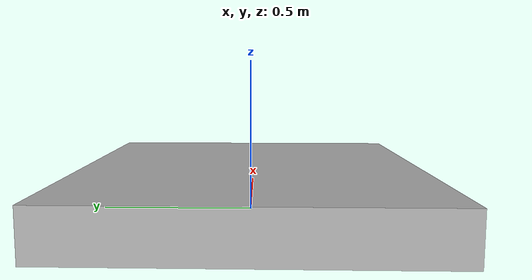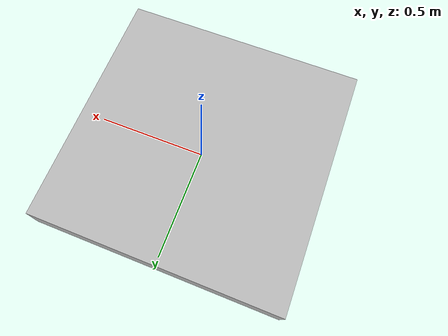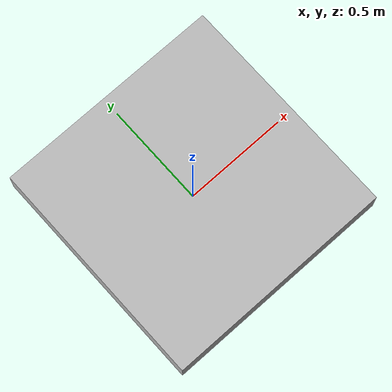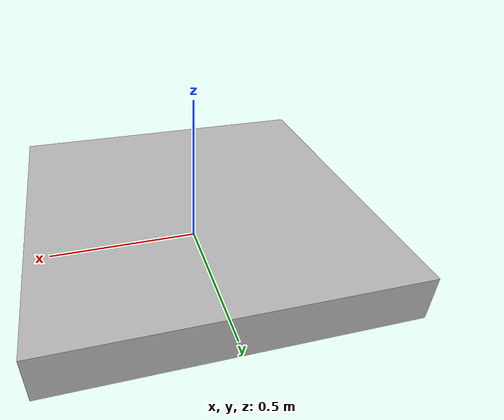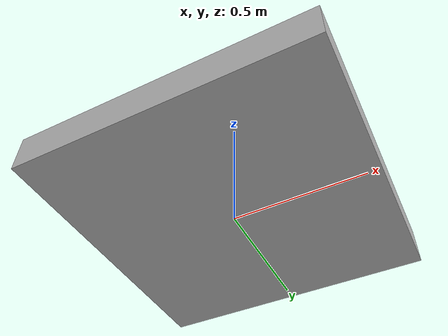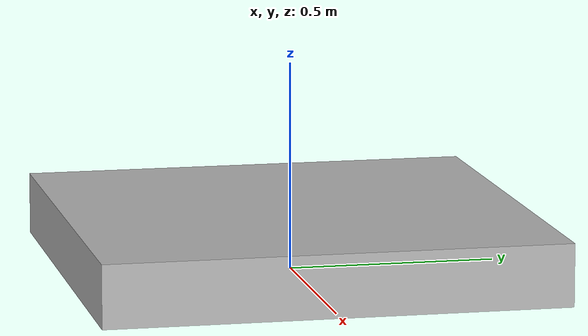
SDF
<sdf version="1.6">
  <model name="pallet">
    <link name="link_1">
      <inertial>
        <mass>1</mass>
        <inertia>
          <ixx>0.166667</ixx>
          <iyy>0.166667</iyy>
          <izz>0.166667</izz>
        </inertia>
      </inertial>
      <pose>0 0 0.075 0 0 0</pose>

      <!-- Visual simplified -->
      <visual name="visual">
        <geometry>
          <box>
            <size>1.1 1.1 0.15</size>
          </box>
        </geometry>
      </visual>

      <!-- Collision simplified -->
      <collision name="collision">
        <geometry>
          <box>
            <size>0.997 0.3 0.3</size>
          </box>
        </geometry>
      </collision>
    </link>
    <static>0</static>
  </model>
</sdf>
